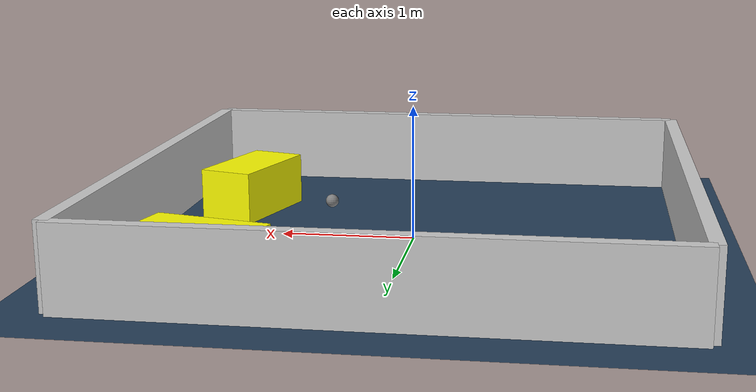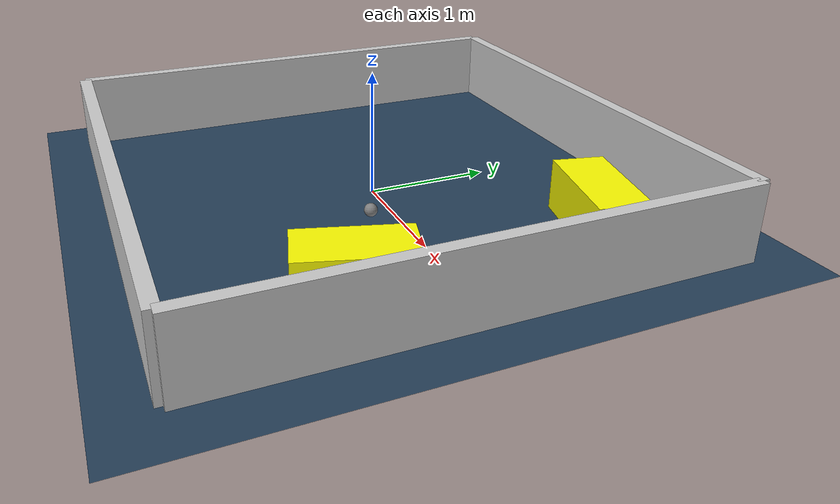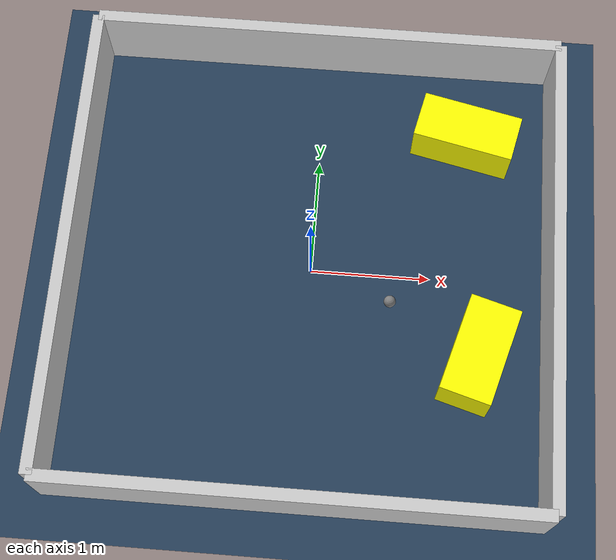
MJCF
<?xml version="1.0" ?>
<mujoco model="generated_environment">
  <option timestep="0.01" integrator="RK4" cone="elliptic"/>
  <default>
    <geom density="1"/>
  </default>
  <asset>
    <texture builtin="gradient" height="3072" rgb1="0.3 0.5 0.7" rgb2="0 0 0" type="skybox" width="512"/>
    <texture builtin="checker" height="300" mark="edge" markrgb="0.8 0.8 0.8" name="groundplane" rgb1="0.2 0.3 0.4" rgb2="0.1 0.2 0.3" type="2d" width="300"/>
    <material name="groundplane" reflectance="0.2" texrepeat="5 5" texture="groundplane" texuniform="true"/>
    <material name="robot" rgba="0.0 1.0 0.0 1"/>
  </asset>
  <worldbody>
    <light dir="0 0 -1" directional="true" pos="0 0 1.5"/>
    <geom condim="4" friction="1.0 0.005 0.001" material="groundplane" name="floor" size="0 0 0.05" type="plane"/>
    <body name="walls">
      <geom name="wall_1" condim="4" pos="-2.0 0.0 0.3" rgba="0.800000011920929 0.800000011920929 0.800000011920929 1.0" size="0.05 2.0 0.3" type="box"/>
      <geom name="wall_2" condim="4" pos="2.0 0.0 0.3" rgba="0.800000011920929 0.800000011920929 0.800000011920929 1.0" size="0.05 2.0 0.3" type="box"/>
      <geom name="wall_3" condim="4" pos="0.0 -2.0 0.3" rgba="0.800000011920929 0.800000011920929 0.800000011920929 1.0" size="2.0 0.05 0.3" type="box"/>
      <geom name="wall_4" condim="4" pos="0.0 2.0 0.3" rgba="0.800000011920929 0.800000011920929 0.800000011920929 1.0" size="2.0 0.05 0.3" type="box"/>
    </body>
    <body name="robot">
      <joint name="joint_x" type="slide" pos="0 0 0" axis="1 0 0"/>
      <joint name="joint_y" type="slide" pos="0 0 0" axis="0 1 0"/>
      <geom name="robot" type="sphere" pos="0.6733050576807607 -0.28656155911312764 0.2" size="0.05" mass="5." friction="1.0 0.005 0.0001" condim="4"/>
      <site name="sensor_ball"/>
    </body>
    <body name="obstacle_1_movable">
      <geom name="obstacle_1_movable" condim="4" pos="1.2473012579953444 1.276201264716555 0.2" euler="0 0 347.31830031149434" friction="1.0 0.005 0.001" rgba="1 1 0 1" size="0.42696839567003464 0.20226004236051037 0.2" type="box" mass="0.1"/>
      <joint type="free"/>
    </body>
    <body name="obstacle_2_movable">
      <geom name="obstacle_2_movable" condim="4" pos="1.414630238402791 -0.6944445033618252 0.2" euler="0 0 163.6398256585495" friction="1.0 0.005 0.001" rgba="1 1 0 1" size="0.21436233450151204 0.41503689235165425 0.2" type="box" mass="0.1"/>
      <joint type="free"/>
    </body>
  </worldbody>
  <actuator>
    <motor name="actuator_x" joint="joint_x" gear="1" ctrlrange="-1 1"/>
    <motor name="actuator_y" joint="joint_y" gear="1" ctrlrange="-1 1"/>
  </actuator>
</mujoco>
